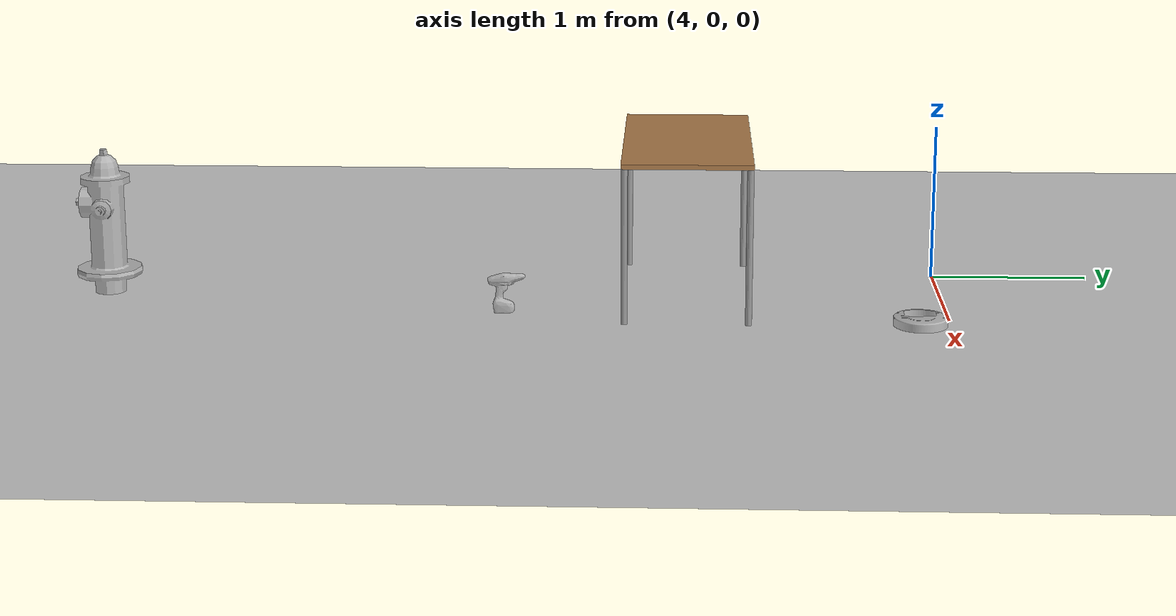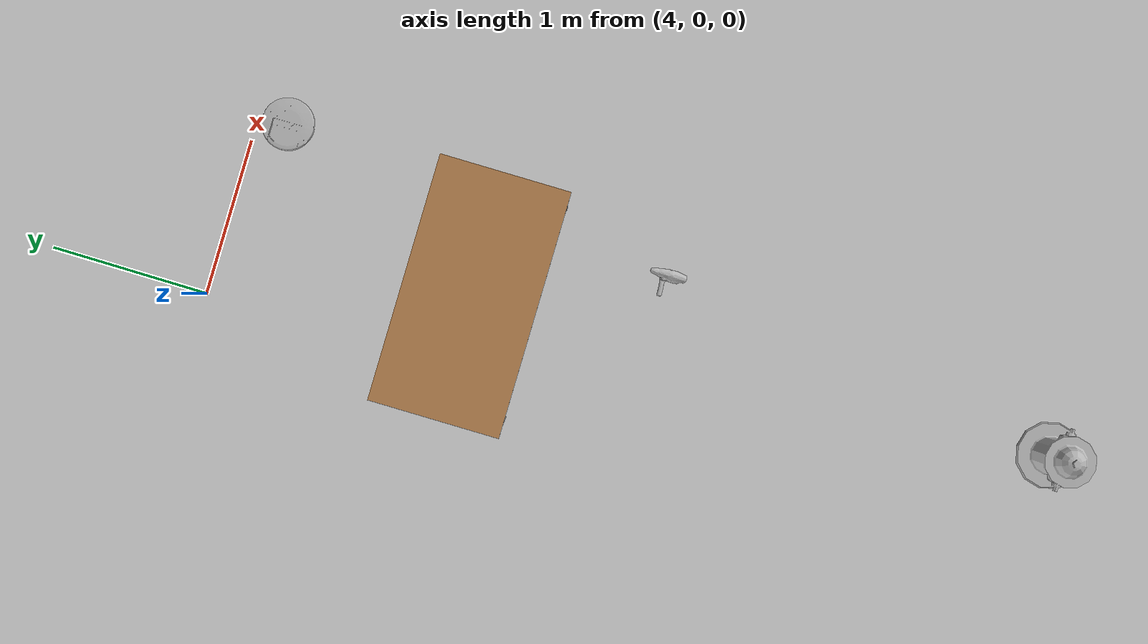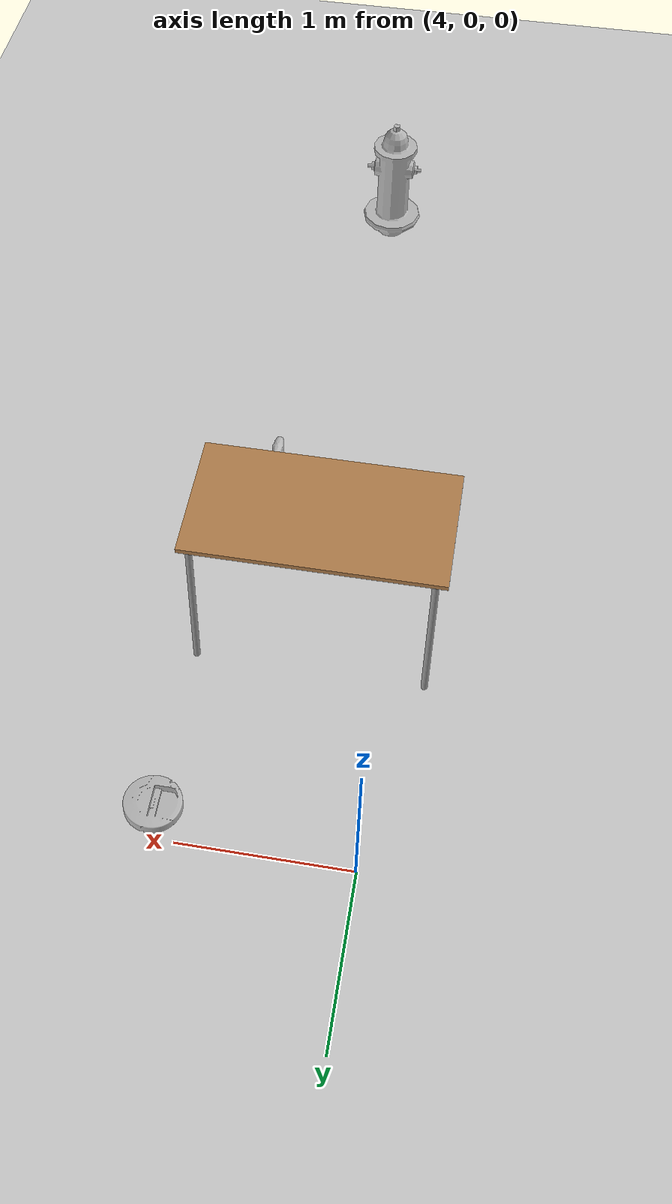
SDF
<sdf version="1.6">
 <world name="default">
  <model name="ground_plane">
   <static>1</static>
   <link name="link">
    <collision name="collision">
     <geometry><plane><normal>0 0 1</normal><size>100 100</size></plane></geometry>
     <surface>
      <contact><collide_bitmask>65535</collide_bitmask></contact>
      <friction><ode><mu>100</mu><mu2>50</mu2></ode></friction>
     </surface>
    </collision>
    <visual name="visual">
     <cast_shadows>0</cast_shadows>
     <geometry><plane><normal>0 0 1</normal><size>100 100</size></plane></geometry>
     <material>
      <script><uri>file://media/materials/scripts/gazebo.material</uri><name>Gazebo/Grey</name></script>
     </material>
    </visual>
   </link>
  </model>
  <model name="table">
   <static>1</static>
   <link name="link">
    <collision name="surface">
     <pose>0 0 1 0 -0 0</pose>
     <geometry><box><size>1.5 0.8 0.03</size></box></geometry>
     <surface><friction><ode><mu>0.6</mu><mu2>0.6</mu2></ode></friction></surface>
    </collision>
    <visual name="visual1">
     <pose>0 0 1 0 -0 0</pose>
     <geometry><box><size>1.5 0.8 0.03</size></box></geometry>
     <material>
      <script><uri>file://media/materials/scripts/gazebo.material</uri><name>Gazebo/Wood</name></script>
     </material>
    </visual>
    <collision name="front_left_leg">
     <pose>0.68 0.38 0.5 0 -0 0</pose>
     <geometry><cylinder><radius>0.02</radius><length>1</length></cylinder></geometry>
    </collision>
    <visual name="front_left_leg">
     <pose>0.68 0.38 0.5 0 -0 0</pose>
     <geometry><cylinder><radius>0.02</radius><length>1</length></cylinder></geometry>
     <material>
      <script><uri>file://media/materials/scripts/gazebo.material</uri><name>Gazebo/Grey</name></script>
     </material>
    </visual>
    <collision name="front_right_leg">
     <pose>0.68 -0.38 0.5 0 -0 0</pose>
     <geometry><cylinder><radius>0.02</radius><length>1</length></cylinder></geometry>
    </collision>
    <visual name="front_right_leg">
     <pose>0.68 -0.38 0.5 0 -0 0</pose>
     <geometry><cylinder><radius>0.02</radius><length>1</length></cylinder></geometry>
     <material>
      <script><uri>file://media/materials/scripts/gazebo.material</uri><name>Gazebo/Grey</name></script>
     </material>
    </visual>
    <collision name="back_right_leg">
     <pose>-0.68 -0.38 0.5 0 -0 0</pose>
     <geometry><cylinder><radius>0.02</radius><length>1</length></cylinder></geometry>
    </collision>
    <visual name="back_right_leg">
     <pose>-0.68 -0.38 0.5 0 -0 0</pose>
     <geometry><cylinder><radius>0.02</radius><length>1</length></cylinder></geometry>
     <material>
      <script><uri>file://media/materials/scripts/gazebo.material</uri><name>Gazebo/Grey</name></script>
     </material>
    </visual>
    <collision name="back_left_leg">
     <pose>-0.68 0.38 0.5 0 -0 0</pose>
     <geometry><cylinder><radius>0.02</radius><length>1</length></cylinder></geometry>
    </collision>
    <visual name="back_left_leg">
     <pose>-0.68 0.38 0.5 0 -0 0</pose>
     <geometry><cylinder><radius>0.02</radius><length>1</length></cylinder></geometry>
     <material>
      <script><uri>file://media/materials/scripts/gazebo.material</uri><name>Gazebo/Grey</name></script>
     </material>
    </visual>
   </link>
   <pose>4.4616 -1.61574 0 0 -0 0</pose>
  </model>
  <model name="fire_hydrant">
   <static>1</static>
   <link name="link">
    <collision name="collision">
     <geometry><mesh><uri>model://fire_hydrant/meshes/fire_hydrant.dae</uri></mesh></geometry>
    </collision>
    <visual name="visual">
     <geometry><mesh><uri>model://fire_hydrant/meshes/fire_hydrant.dae</uri></mesh></geometry>
    </visual>
   </link>
   <pose>4.52435 -5.31706 0 0 -0 0</pose>
  </model>
  <model name="drill">
   <link name="link">
    <inertial>
     <pose>-0.00637 -0.008 0.13254 0 -0 0</pose>
     <inertia>
      <ixx>0.0133113</ixx>
      <ixy>-0.00030365</ixy>
      <ixz>-0.00034148</ixz>
      <iyy>0.0115766</iyy>
      <iyz>0.00088073</iyz>
      <izz>0.00378028</izz>
     </inertia>
     <mass>1.50252</mass>
    </inertial>
    <collision name="collision">
     <pose>0 0 -0.09 0 -0 0</pose>
     <geometry><mesh><uri>model://cordless_drill/meshes/cordless_drill.stl</uri></mesh></geometry>
     <surface><contact><ode><max_vel>0.1</max_vel><min_depth>0.001</min_depth></ode></contact></surface>
    </collision>
    <visual name="visual">
     <pose>0 0 -0.09 0 -0 0</pose>
     <geometry><mesh><uri>model://cordless_drill/meshes/cordless_drill.dae</uri></mesh></geometry>
    </visual>
   </link>
   <pose>4.92936 -2.74058 -0.002168 -0.000176 -0.003164 -0.000534</pose>
  </model>
  <model name="create">
   <link name="base">
    <inertial>
     <pose>0.001453 -0.000453 0.029787 0 -0 0</pose>
     <inertia>
      <ixx>0.05864</ixx>
      <ixy>0.000124</ixy>
      <ixz>0.000615</ixz>
      <iyy>0.058786</iyy>
      <iyz>1.4e-05</iyz>
      <izz>1.53244</izz>
     </inertia>
     <mass>2.234</mass>
    </inertial>
    <collision name="base_collision">
     <pose>0 0 0.0478 0 -0 0</pose>
     <geometry><cylinder><radius>0.016495</radius><length>0.061163</length></cylinder></geometry>
    </collision>
    <visual name="base_visual">
     <pose>0 0 0.0478 0 -0 0</pose>
     <geometry><mesh><uri>model://create/meshes/create_body.dae</uri></mesh></geometry>
    </visual>
    <collision name="front_wheel_collision">
     <pose>0.13 0 0.017 -0 1.5707 1.5707</pose>
     <geometry><sphere><radius>0.018</radius></sphere></geometry>
     <surface>
      <friction><ode><mu>0</mu><mu2>0</mu2><fdir1>0 0 0</fdir1><slip1>0</slip1><slip2>0</slip2></ode></friction>
     </surface>
    </collision>
    <visual name="front_wheel_visual">
     <pose>0.13 0 0.017 -0 1.5707 1.5707</pose>
     <geometry><sphere><radius>0.009</radius></sphere></geometry>
    </visual>
    <collision name="rear_wheel_collision">
     <pose>-0.13 0 0.017 -0 1.5707 1.5707</pose>
     <geometry><sphere><radius>0.015</radius></sphere></geometry>
     <surface>
      <friction><ode><mu>0</mu><mu2>0</mu2><fdir1>0 0 0</fdir1><slip1>0</slip1><slip2>0</slip2></ode></friction>
     </surface>
    </collision>
    <visual name="rear_wheel_visual">
     <pose>-0.13 0 0.017 -0 1.5707 1.5707</pose>
     <geometry><sphere><radius>0.0075</radius></sphere></geometry>
    </visual>
    <sensor name="left_cliff_sensor" type="ray">
     <pose>0.07 0.14 0.027 0 1.57079 0</pose>
     <ray>
      <scan>
       <horizontal>
        <samples>1</samples>
        <resolution>1</resolution>
        <min_angle>0</min_angle>
        <max_angle>0</max_angle>
       </horizontal>
       <vertical><samples>1</samples><min_angle>0</min_angle><max_angle>0</max_angle></vertical>
      </scan>
      <range><min>0.01</min><max>0.04</max><resolution>0.1</resolution></range>
     </ray>
    </sensor>
    <sensor name="leftfront_cliff_sensor" type="ray">
     <pose>0.15 0.04 0.027 0 1.57079 0</pose>
     <ray>
      <scan>
       <horizontal>
        <samples>1</samples>
        <resolution>1</resolution>
        <min_angle>0</min_angle>
        <max_angle>0</max_angle>
       </horizontal>
       <vertical><samples>1</samples><min_angle>0</min_angle><max_angle>0</max_angle></vertical>
      </scan>
      <range><min>0.01</min><max>0.04</max><resolution>0.1</resolution></range>
     </ray>
    </sensor>
    <sensor name="right_cliff_sensor" type="ray">
     <pose>0.07 -0.14 0.027 0 1.57079 0</pose>
     <ray>
      <scan>
       <horizontal>
        <samples>1</samples>
        <resolution>1</resolution>
        <min_angle>0</min_angle>
        <max_angle>0</max_angle>
       </horizontal>
       <vertical><samples>1</samples><min_angle>0</min_angle><max_angle>0</max_angle></vertical>
      </scan>
      <range><min>0.01</min><max>0.04</max><resolution>0.1</resolution></range>
     </ray>
    </sensor>
    <sensor name="rightfront_cliff_sensor" type="ray">
     <pose>0.15 -0.04 0.027 0 1.57079 0</pose>
     <ray>
      <scan>
       <horizontal>
        <samples>1</samples>
        <resolution>1</resolution>
        <min_angle>0</min_angle>
        <max_angle>0</max_angle>
       </horizontal>
       <vertical><samples>1</samples><min_angle>0</min_angle><max_angle>0</max_angle></vertical>
      </scan>
      <range><min>0.01</min><max>0.04</max><resolution>0.1</resolution></range>
     </ray>
    </sensor>
    <sensor name="wall_sensor" type="ray">
     <pose>0.09 -0.12 0.059 0 0 -1</pose>
     <ray>
      <scan>
       <horizontal>
        <samples>1</samples>
        <resolution>1</resolution>
        <min_angle>0</min_angle>
        <max_angle>0</max_angle>
       </horizontal>
       <vertical><samples>1</samples><min_angle>0</min_angle><max_angle>0</max_angle></vertical>
      </scan>
      <range><min>0.016</min><max>0.04</max><resolution>0.1</resolution></range>
     </ray>
    </sensor>
   </link>
   <link name="left_wheel">
    <pose>0 0.13 0.032 0 -0 0</pose>
    <inertial>
     <inertia><ixx>0.001</ixx><ixy>0</ixy><ixz>0</ixz><iyy>0.001</iyy><iyz>0</iyz><izz>0.001</izz></inertia>
     <mass>0.01</mass>
    </inertial>
    <collision name="collision">
     <pose>0 0 0 -0 1.5707 1.5707</pose>
     <geometry><cylinder><radius>0.033</radius><length>0.023</length></cylinder></geometry>
     <surface>
      <friction><ode><mu>10</mu><mu2>10</mu2><fdir1>0 0 0</fdir1><slip1>0</slip1><slip2>0</slip2></ode></friction>
     </surface>
    </collision>
    <visual name="visual">
     <pose>0 0 0 -0 1.5707 1.5707</pose>
     <geometry><cylinder><radius>0.033</radius><length>0.023</length></cylinder></geometry>
    </visual>
   </link>
   <link name="right_wheel">
    <pose>0 -0.13 0.032 0 -0 0</pose>
    <inertial>
     <inertia><ixx>0.001</ixx><ixy>0</ixy><ixz>0</ixz><iyy>0.001</iyy><iyz>0</iyz><izz>0.001</izz></inertia>
     <mass>0.01</mass>
    </inertial>
    <collision name="collision">
     <pose>0 0 0 -0 1.5707 1.5707</pose>
     <geometry><cylinder><radius>0.033</radius><length>0.023</length></cylinder></geometry>
     <surface>
      <friction><ode><mu>10</mu><mu2>10</mu2><fdir1>0 0 0</fdir1><slip1>0</slip1><slip2>0</slip2></ode></friction>
     </surface>
    </collision>
    <visual name="visual">
     <pose>0 0 0 -0 1.5707 1.5707</pose>
     <geometry><cylinder><radius>0.033</radius><length>0.023</length></cylinder></geometry>
    </visual>
   </link>
   <joint name="left_wheel" type="revolute">
    <parent>base</parent>
    <child>left_wheel</child>
    <axis>
     <xyz>0 1 0</xyz>
     <use_parent_model_frame>1</use_parent_model_frame>
     <limit><lower>-1e+16</lower><upper>1e+16</upper></limit>
     <dynamics><spring_reference>0</spring_reference><spring_stiffness>0</spring_stiffness></dynamics>
    </axis>
   </joint>
   <joint name="right_wheel" type="revolute">
    <parent>base</parent>
    <child>right_wheel</child>
    <axis>
     <xyz>0 1 0</xyz>
     <use_parent_model_frame>1</use_parent_model_frame>
     <limit><lower>-1e+16</lower><upper>1e+16</upper></limit>
     <dynamics><spring_reference>0</spring_reference><spring_stiffness>0</spring_stiffness></dynamics>
    </axis>
   </joint>
   <pose>5.15989 -0.192455 0.000933 -7.3e-05 -0.000525 0.001397</pose>
  </model>
 </world>
</sdf>
